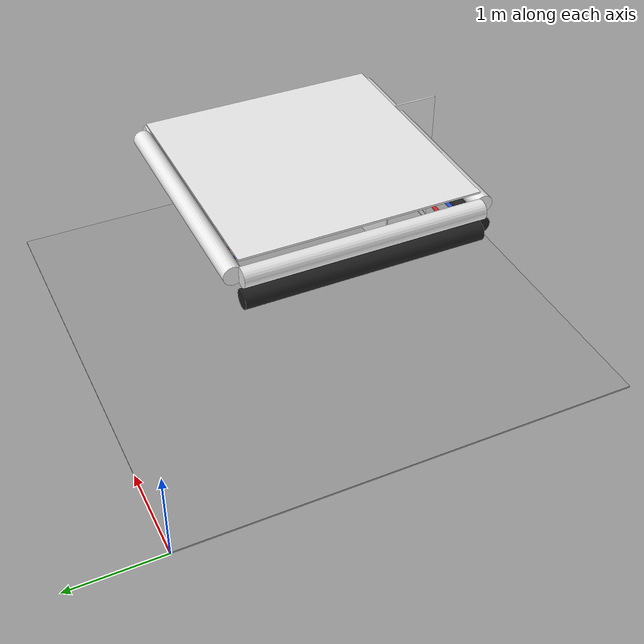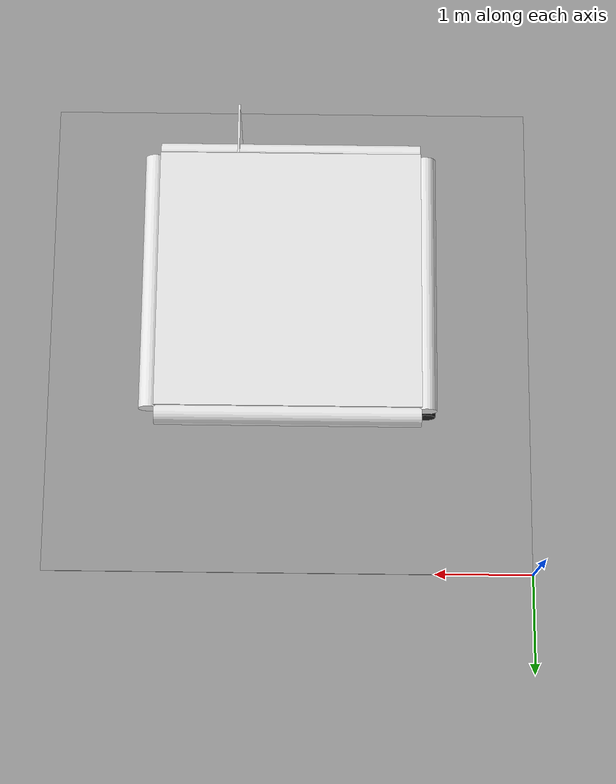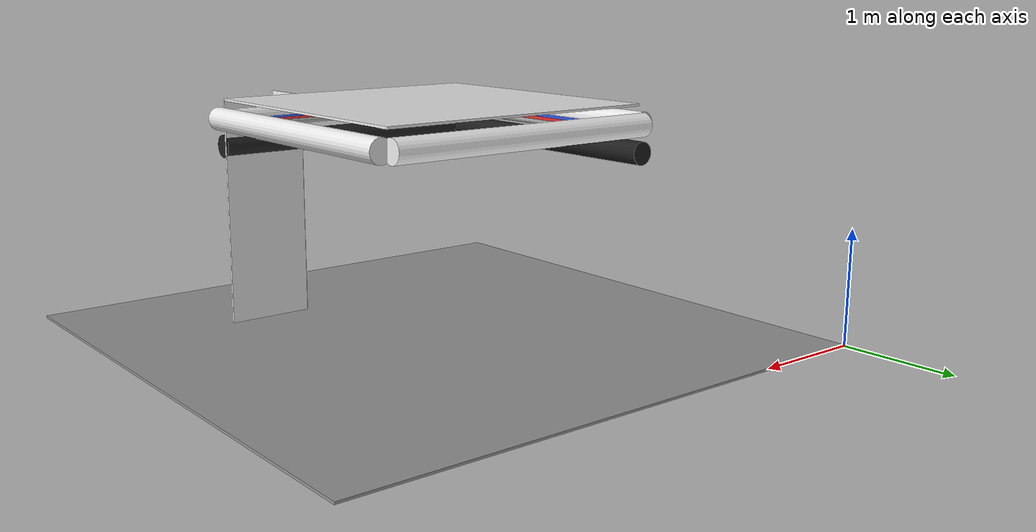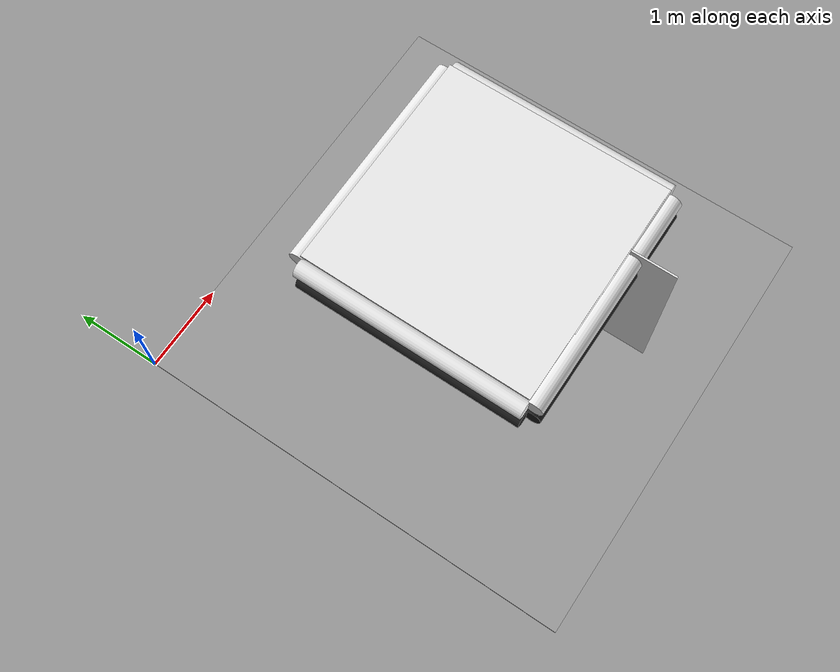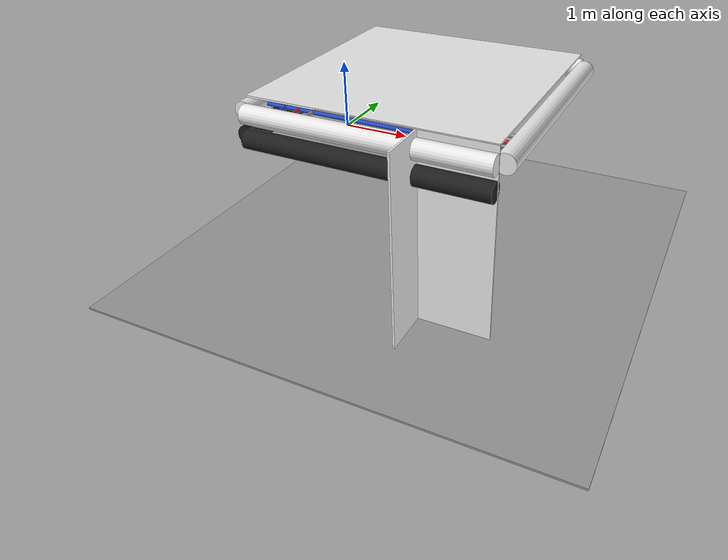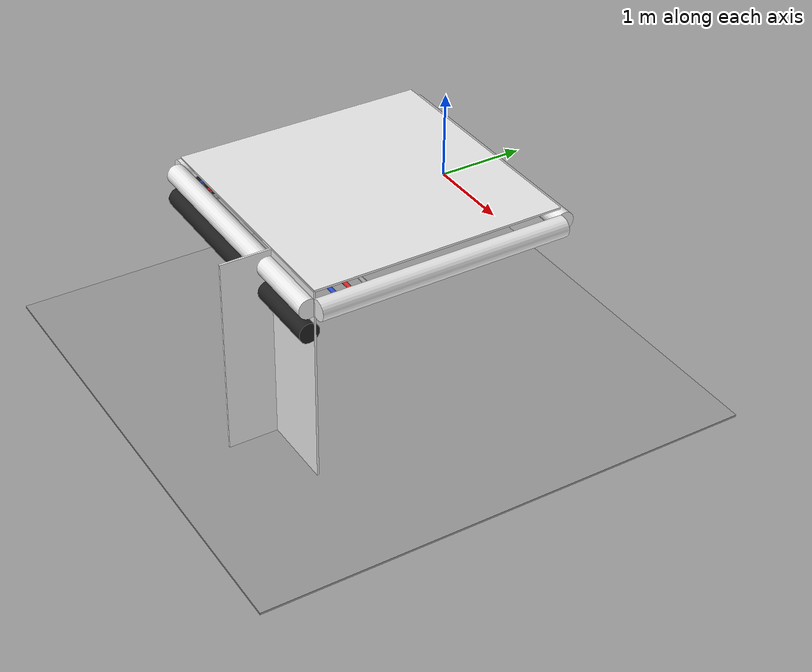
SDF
<sdf version="1.6">
 <world name="default">
  <model name="wall_top_1_-1_0_2">
   <static>1</static>
   <pose>2.5 -2.5 2.0 1.57 0.0 3.14</pose>
   <link name="link">
    <collision name="collision"><geometry><box><size>2.5 0.02 2.5</size></box></geometry></collision>
    <visual name="visual">
     <material>
      <script><name>Gazebo/White</name><uri>file://media/materials/scripts/gazebo.material</uri></script>
     </material>
     <geometry><box><size>2.5 0.02 2.5</size></box></geometry>
    </visual>
   </link>
  </model>
  <model name="white_pipe_left_1_-1_0_2">
   <static>1</static>
   <pose>2.5 -2.5 1.84 0.0 0.0 3.14</pose>
   <link name="link_0">
    <visual name="visual">
     <pose>-1.3 0 0 1.57 0 0</pose>
     <geometry><cylinder><radius>0.1</radius><length>2.5</length></cylinder></geometry>
     <material>
      <script><uri>file://media/materials/scripts/gazebo.material</uri><name>Gazebo/White</name></script>
     </material>
    </visual>
    <collision name="collision">
     <pose>-1.3 0 0 1.57 0 0</pose>
     <geometry><cylinder><radius>0.1</radius><length>2.5</length></cylinder></geometry>
    </collision>
   </link>
  </model>
  <model name="white_pipe_right_1_-1_0_2">
   <static>1</static>
   <pose>2.5 -2.5 1.84 0.0 0.0 3.14</pose>
   <link name="link_0">
    <visual name="visual">
     <pose>1.3 0 0 1.57 0 0</pose>
     <geometry><cylinder><radius>0.1</radius><length>2.5</length></cylinder></geometry>
     <material>
      <script><uri>file://media/materials/scripts/gazebo.material</uri><name>Gazebo/White</name></script>
     </material>
    </visual>
    <collision name="collision">
     <pose>1.3 0 0 1.57 0 0</pose>
     <geometry><cylinder><radius>0.1</radius><length>2.5</length></cylinder></geometry>
    </collision>
   </link>
  </model>
  <model name="black_pipe_right_1_-1_0_2">
   <static>1</static>
   <pose>2.5 -2.5 1.84 0.0 0.0 3.14</pose>
   <link name="link_0">
    <visual name="visual">
     <pose>1.3 0 -0.25 1.57 0 0</pose>
     <geometry><cylinder><radius>0.1</radius><length>2.5</length></cylinder></geometry>
     <material>
      <script><uri>file://media/materials/scripts/gazebo.material</uri><name>Gazebo/Black</name></script>
     </material>
    </visual>
    <collision name="collision">
     <pose>1.3 0 -0.25 1.57 0 0</pose>
     <geometry><cylinder><radius>0.1</radius><length>2.5</length></cylinder></geometry>
    </collision>
   </link>
  </model>
  <model name="grey_pipe_right_1_-1_0_2">
   <static>1</static>
   <pose>2.5 -2.5 1.84 0.0 0.0 3.14</pose>
   <link name="link_0">
    <visual name="visual">
     <pose>0.7 0 0 1.57 0 0</pose>
     <geometry><cylinder><radius>0.02</radius><length>2.5</length></cylinder></geometry>
     <material>
      <script><uri>file://media/materials/scripts/gazebo.material</uri><name>Gazebo/Grey</name></script>
     </material>
    </visual>
    <collision name="collision">
     <pose>0.7 0 0 1.57 0 0</pose>
     <geometry><cylinder><radius>0.02</radius><length>2.5</length></cylinder></geometry>
    </collision>
   </link>
  </model>
  <model name="red_pipe_right_1_-1_0_2">
   <static>1</static>
   <pose>2.5 -2.5 1.84 0.0 0.0 3.14</pose>
   <link name="link_0">
    <visual name="visual">
     <pose>0.85 0 0 1.57 0 0</pose>
     <geometry><cylinder><radius>0.02</radius><length>2.5</length></cylinder></geometry>
     <material>
      <script><uri>file://media/materials/scripts/gazebo.material</uri><name>Gazebo/Red</name></script>
     </material>
    </visual>
    <collision name="collision">
     <pose>0.85 0 0 1.57 0 0</pose>
     <geometry><cylinder><radius>0.02</radius><length>2.5</length></cylinder></geometry>
    </collision>
   </link>
  </model>
  <model name="blue_pipe_right_1_-1_0_2">
   <static>1</static>
   <pose>2.5 -2.5 1.84 0.0 0.0 3.14</pose>
   <link name="link_0">
    <visual name="visual">
     <pose>1 0 0 1.57 0 0</pose>
     <geometry><cylinder><radius>0.02</radius><length>2.5</length></cylinder></geometry>
     <material>
      <script><uri>file://media/materials/scripts/gazebo.material</uri><name>Gazebo/Blue</name></script>
     </material>
    </visual>
    <collision name="collision">
     <pose>1 0 0 1.57 0 0</pose>
     <geometry><cylinder><radius>0.02</radius><length>2.5</length></cylinder></geometry>
    </collision>
   </link>
  </model>
  <model name="white_pipe_left_1_1_-1_0_2">
   <static>1</static>
   <pose>2.5 -2.5 1.84 0.0 0.0 4.71</pose>
   <link name="link_0">
    <visual name="visual">
     <pose>-1.3 0 0 1.57 0 0</pose>
     <geometry><cylinder><radius>0.1</radius><length>2.5</length></cylinder></geometry>
     <material>
      <script><uri>file://media/materials/scripts/gazebo.material</uri><name>Gazebo/White</name></script>
     </material>
    </visual>
    <collision name="collision">
     <pose>-1.3 0 0 1.57 0 0</pose>
     <geometry><cylinder><radius>0.1</radius><length>2.5</length></cylinder></geometry>
    </collision>
   </link>
  </model>
  <model name="white_pipe_right_1_1_-1_0_2">
   <static>1</static>
   <pose>2.5 -2.5 1.84 0.0 0.0 4.71</pose>
   <link name="link_0">
    <visual name="visual">
     <pose>1.3 0 0 1.57 0 0</pose>
     <geometry><cylinder><radius>0.1</radius><length>2.5</length></cylinder></geometry>
     <material>
      <script><uri>file://media/materials/scripts/gazebo.material</uri><name>Gazebo/White</name></script>
     </material>
    </visual>
    <collision name="collision">
     <pose>1.3 0 0 1.57 0 0</pose>
     <geometry><cylinder><radius>0.1</radius><length>2.5</length></cylinder></geometry>
    </collision>
   </link>
  </model>
  <model name="black_pipe_right_1_1_-1_0_2">
   <static>1</static>
   <pose>2.5 -2.5 1.84 0.0 0.0 4.71</pose>
   <link name="link_0">
    <visual name="visual">
     <pose>1.3 0 -0.25 1.57 0 0</pose>
     <geometry><cylinder><radius>0.1</radius><length>2.5</length></cylinder></geometry>
     <material>
      <script><uri>file://media/materials/scripts/gazebo.material</uri><name>Gazebo/Black</name></script>
     </material>
    </visual>
    <collision name="collision">
     <pose>1.3 0 -0.25 1.57 0 0</pose>
     <geometry><cylinder><radius>0.1</radius><length>2.5</length></cylinder></geometry>
    </collision>
   </link>
  </model>
  <model name="grey_pipe_right_1_1_-1_0_2">
   <static>1</static>
   <pose>2.5 -2.5 1.84 0.0 0.0 4.71</pose>
   <link name="link_0">
    <visual name="visual">
     <pose>0.7 0 0 1.57 0 0</pose>
     <geometry><cylinder><radius>0.02</radius><length>2.5</length></cylinder></geometry>
     <material>
      <script><uri>file://media/materials/scripts/gazebo.material</uri><name>Gazebo/Grey</name></script>
     </material>
    </visual>
    <collision name="collision">
     <pose>0.7 0 0 1.57 0 0</pose>
     <geometry><cylinder><radius>0.02</radius><length>2.5</length></cylinder></geometry>
    </collision>
   </link>
  </model>
  <model name="red_pipe_right_1_1_-1_0_2">
   <static>1</static>
   <pose>2.5 -2.5 1.84 0.0 0.0 4.71</pose>
   <link name="link_0">
    <visual name="visual">
     <pose>0.85 0 0 1.57 0 0</pose>
     <geometry><cylinder><radius>0.02</radius><length>2.5</length></cylinder></geometry>
     <material>
      <script><uri>file://media/materials/scripts/gazebo.material</uri><name>Gazebo/Red</name></script>
     </material>
    </visual>
    <collision name="collision">
     <pose>0.85 0 0 1.57 0 0</pose>
     <geometry><cylinder><radius>0.02</radius><length>2.5</length></cylinder></geometry>
    </collision>
   </link>
  </model>
  <model name="blue_pipe_right_1_1_-1_0_2">
   <static>1</static>
   <pose>2.5 -2.5 1.84 0.0 0.0 4.71</pose>
   <link name="link_0">
    <visual name="visual">
     <pose>1 0 0 1.57 0 0</pose>
     <geometry><cylinder><radius>0.02</radius><length>2.5</length></cylinder></geometry>
     <material>
      <script><uri>file://media/materials/scripts/gazebo.material</uri><name>Gazebo/Blue</name></script>
     </material>
    </visual>
    <collision name="collision">
     <pose>1 0 0 1.57 0 0</pose>
     <geometry><cylinder><radius>0.02</radius><length>2.5</length></cylinder></geometry>
    </collision>
   </link>
  </model>
  <model name="wall_front_front_right_1_-1_0_2">
   <static>1</static>
   <pose>3.375 -3.75 1.0 0.0 0.0 3.14</pose>
   <link name="link">
    <collision name="collision"><geometry><box><size>0.75 0.02 2.0</size></box></geometry></collision>
    <visual name="visual">
     <material>
      <script><name>Gazebo/White</name><uri>file://media/materials/scripts/gazebo.material</uri></script>
     </material>
     <geometry><box><size>0.75 0.02 2.0</size></box></geometry>
    </visual>
   </link>
  </model>
  <model name="wall_front_front_up_1_-1_0_2">
   <static>1</static>
   <pose>2.5 -3.75 2.0 0.0 0.0 3.14</pose>
   <link name="link">
    <collision name="collision"><geometry><box><size>1.0 0.02 0.001</size></box></geometry></collision>
    <visual name="visual">
     <material>
      <script><name>Gazebo/White</name><uri>file://media/materials/scripts/gazebo.material</uri></script>
     </material>
     <geometry><box><size>1.0 0.02 0.001</size></box></geometry>
    </visual>
   </link>
  </model>
  <model name="wall_front_inside_left_1_-1_0_2">
   <static>1</static>
   <pose>3.0 -4.0 1.0 0.0 0.0 4.71</pose>
   <link name="link">
    <collision name="collision"><geometry><box><size>0.5 0.02 2</size></box></geometry></collision>
    <visual name="visual">
     <material>
      <script><name>Gazebo/White</name><uri>file://media/materials/scripts/gazebo.material</uri></script>
     </material>
     <geometry><box><size>0.5 0.02 2</size></box></geometry>
    </visual>
   </link>
  </model>
  <model name="wall_bottom_1_-1_0_2">
   <static>1</static>
   <pose>2.5 -2.5 0.0 0.0 0.0 3.14</pose>
   <link name="link">
    <collision name="collision"><geometry><box><size>5.0 5.0 0.02</size></box></geometry></collision>
    <visual name="visual">
     <material>
      <script><name>Gazebo/Grey</name><uri>file://media/materials/scripts/gazebo.material</uri></script>
     </material>
     <geometry><box><size>5.0 5.0 0.02</size></box></geometry>
    </visual>
   </link>
  </model>
 </world>
</sdf>
